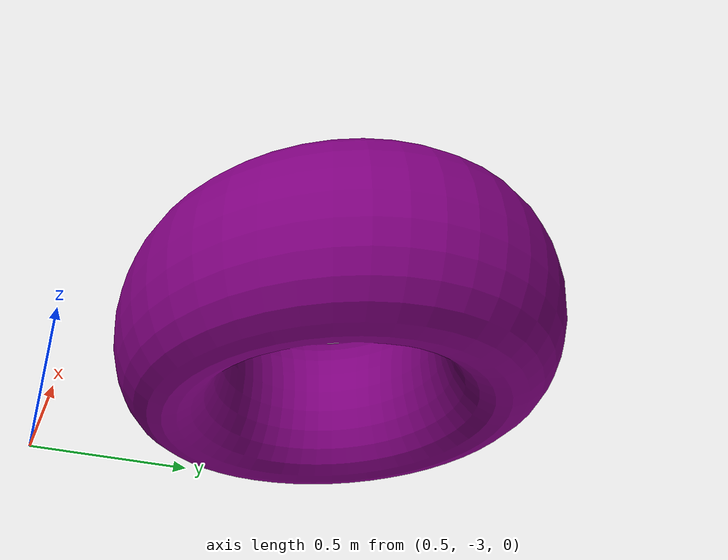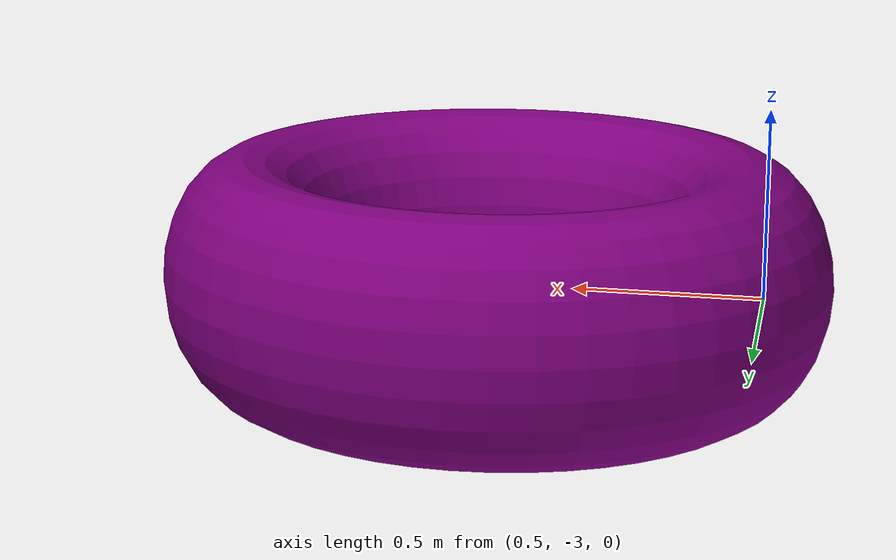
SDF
<?xml version="1.0" ?>
<sdf version="1.5">

  <model name="obstacle_4">
  <static>true</static>
  <link name="link">
    <pose>0.37 12.5 0 0 0 0</pose>
    <collision name="collision">
      <geometry>
        <mesh>
          <uri>model://obstacle_4/mesh/obstacle_4.stl</uri>
          <scale>0.9 0.9 0.1</scale>
        </mesh>
      </geometry>
    </collision>
    <visual name="visual">
      <cast_shadows>true</cast_shadows>
      <geometry>
        <mesh>
          <uri>model://obstacle_4/mesh/obstacle_4.stl</uri>
          <scale>0.9 0.9 0.1</scale>
        </mesh>
      </geometry>
      <material>
        <ambient>0.5 0 0.5 1</ambient>
        <diffuse>0.5 0 0.5 1</diffuse>
        <specular>0 0 0 0</specular>
      </material>
    </visual>
  </link>
</model>
</sdf>
